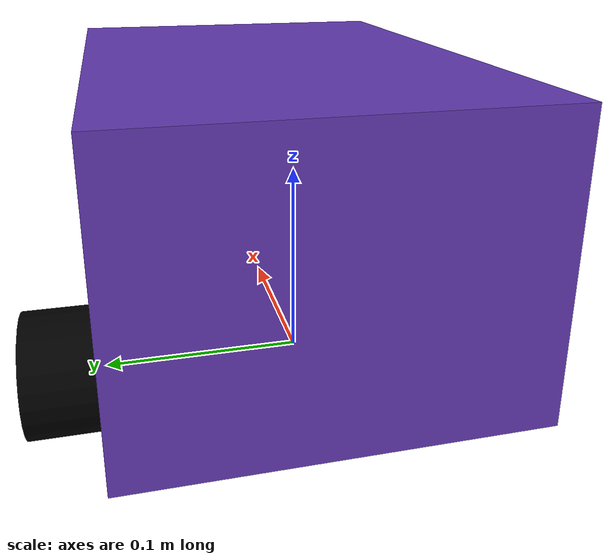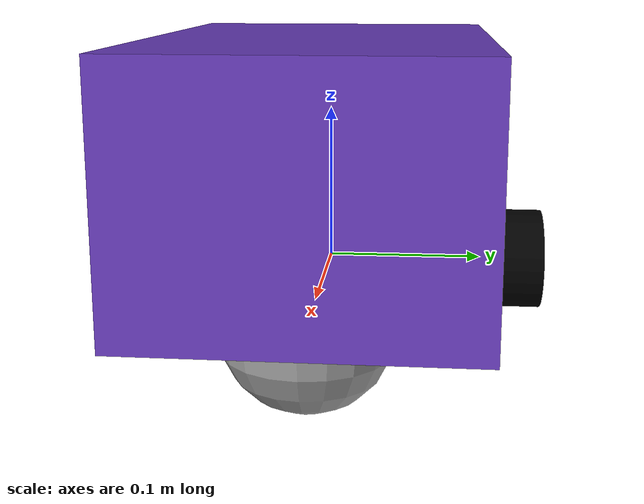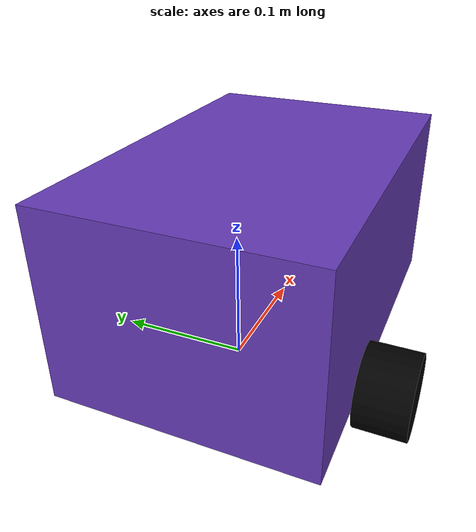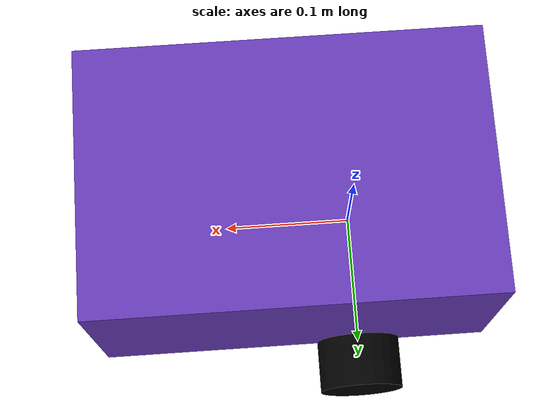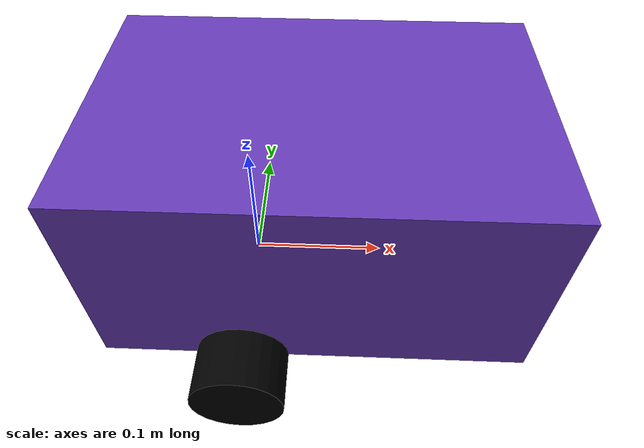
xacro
<?xml version="1.0"?>
<robot xmlns:xacro="http://www.ros.org/wiki/xacro">

  <xacro:include filename="inertial_macros.xacro" />

  <!-- Base link -->
  <link name="base_link"/>

  <!-- Chassis -->
  <joint name="chassis_joint" type="fixed">
    <parent link="base_link"/>
    <child link="chassis"/>
    <origin xyz="-0.1 0 0"/>
  </joint>

  <link name="chassis">
    <visual>
      <origin xyz="0.15 0 0.075"/>
      <geometry>
        <box size="0.3 0.2 0.15"/>
      </geometry>
      <material name="chassis_material">
        <color rgba="0.40 0.23 0.72 1.0"/>
      </material>
    </visual>
    <collision>
      <origin xyz="0.15 0 0.075"/>
      <geometry>
        <box size="0.3 0.2 0.15"/>
      </geometry>
    </collision>
    <xacro:inertial_box mass="0.5" x="0.3" y="0.2" z="0.15">
      <origin xyz="0.15 0 0.075" rpy="0 0 0"/>
    </xacro:inertial_box>
  </link>

  <!-- Left wheel -->
  <joint name="left_wheel_joint" type="continuous">
    <parent link="base_link"/>
    <child link="left_wheel"/>
    <origin xyz="0 0.12 0" rpy="-${pi/2} 0 0"/>
    <axis xyz="0 0 1"/>
  </joint>

  <link name="left_wheel">
    <visual>
      <geometry>
        <cylinder radius="0.0325" length="0.04"/>
      </geometry>
      <material name="wheel_material">
        <color rgba="0.0 0.0 0.0 1.0"/>
      </material>
    </visual>
    <collision>
      <geometry>
        <cylinder radius="0.0325" length="0.04"/>
      </geometry>
    </collision>
    <xacro:inertial_cylinder mass="0.1" length="0.04" radius="0.0325">
      <origin xyz="0 0 0" rpy="0 0 0"/>
    </xacro:inertial_cylinder>
  </link>

  <!-- Right wheel -->
  <joint name="right_wheel_joint" type="continuous">
    <parent link="base_link"/>
    <child link="right_wheel"/>
    <origin xyz="0 -0.12 0" rpy="${pi/2} 0 0"/>
    <axis xyz="0 0 -1"/>
  </joint>

  <link name="right_wheel">
    <visual>
      <geometry>
        <cylinder radius="0.0325" length="0.04"/>
      </geometry>
      <material name="wheel_material">
        <color rgba="0.0 0.0 0.0 1.0"/>
      </material>
    </visual>
    <collision>
      <geometry>
        <cylinder radius="0.0325" length="0.04"/>
      </geometry>
    </collision>
    <xacro:inertial_cylinder mass="0.1" length="0.04" radius="0.0325">
      <origin xyz="0 0 0" rpy="0 0 0"/>
    </xacro:inertial_cylinder>
  </link>

  <!-- Castor wheel -->
  <joint name="castor_wheel_joint" type="fixed">
    <parent link="chassis"/>
    <child link="castor_wheel"/>
    <origin xyz="0.24 0 0"/>
  </joint>

  <link name="castor_wheel">
    <visual>
      <geometry>
        <sphere radius="0.05"/>
      </geometry>
      <material name="castor_material">
        <color rgba="0.62 0.62 0.62 1.0"/>
      </material>
    </visual>
    <collision>
      <geometry>
        <sphere radius="0.05"/>
      </geometry>
    </collision>
    <xacro:inertial_sphere mass="0.1" radius="0.05">
      <origin xyz="0 0 0" rpy="0 0 0"/>
    </xacro:inertial_sphere>
  </link>

  <!-- Gazebo Parameters -->
  <gazebo reference="chassis">
    <mu1>1.0</mu1>
    <mu2>1.0</mu2>
  </gazebo>

  <gazebo reference="right_wheel">
    <mu1>1.0</mu1>
    <mu2>1.0</mu2>
  </gazebo>

  <gazebo reference="left_wheel">
    <mu1>1.0</mu1>
    <mu2>1.0</mu2>
  </gazebo>

  <gazebo reference="castor_wheel">
    <mu1>0.000001</mu1>
    <mu2>0.000001</mu2>
  </gazebo>

</robot>
